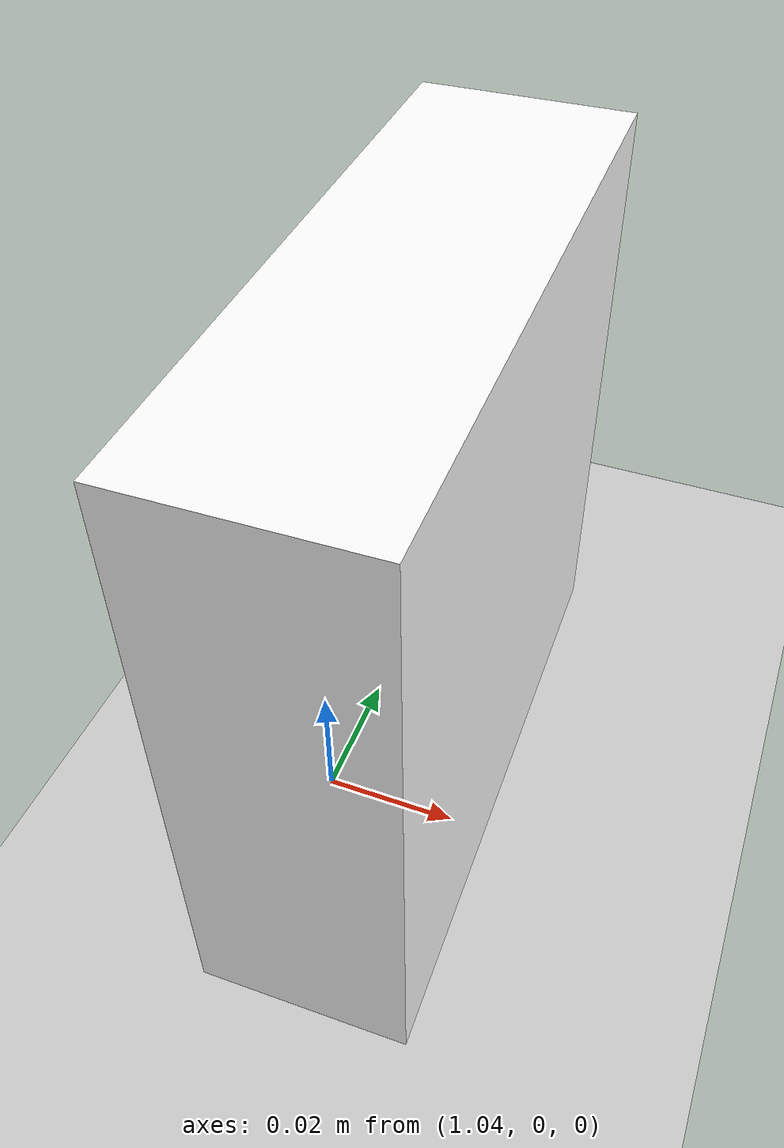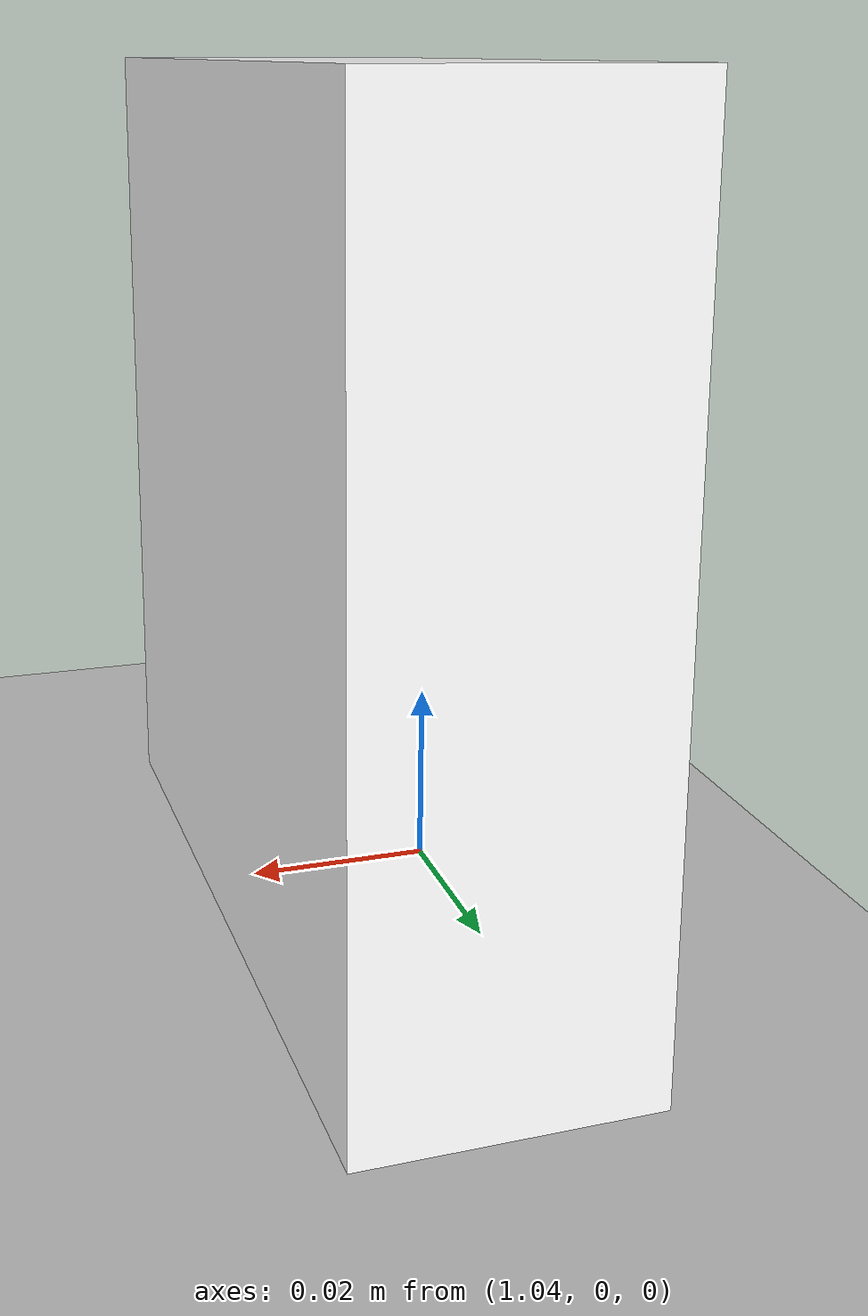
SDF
<sdf version="1.6">
 <world name="default">
  <light name="sun" type="directional">
   <pose>0 0 10 0 -0 0</pose>
   <diffuse>0.8 0.8 0.8 1</diffuse>
   <specular>0.2 0.2 0.2 1</specular>
   <attenuation>
    <range>1000</range>
    <constant>0.9</constant>
    <linear>0.01</linear>
    <quadratic>0.001</quadratic>
   </attenuation>
   <direction>-0.5 0.1 -0.9</direction>
  </light>
  <model name="ground_plane">
   <static>1</static>
   <link name="link">
    <collision name="collision">
     <geometry><plane><normal>0 0 1</normal><size>100 100</size></plane></geometry>
     <surface><friction><ode><mu>100</mu><mu2>50</mu2></ode></friction></surface>
    </collision>
    <visual name="visual">
     <cast_shadows>0</cast_shadows>
     <geometry><plane><normal>0 0 1</normal><size>100 100</size></plane></geometry>
     <material>
      <script><uri>file://media/materials/scripts/gazebo.material</uri><name>Gazebo/Grey</name></script>
     </material>
    </visual>
   </link>
  </model>
  <gravity>0 0 -9.8</gravity>
  <magnetic_field>6e-06 2.3e-05 -4.2e-05</magnetic_field>
  <atmosphere type="adiabatic"/>
  <physics name="default_physics" default="0" type="ode">
   <max_step_size>0.001</max_step_size>
   <real_time_factor>1</real_time_factor>
   <real_time_update_rate>1000</real_time_update_rate>
  </physics>
  <scene><ambient>0.4 0.4 0.4 1</ambient><background>0.7 0.7 0.7 1</background><shadows>1</shadows></scene>
  <audio><device>default</device></audio>
  <spherical_coordinates>
   <surface_model>EARTH_WGS84</surface_model>
   <latitude_deg>0</latitude_deg>
   <longitude_deg>0</longitude_deg>
   <elevation>0</elevation>
   <heading_deg>0</heading_deg>
  </spherical_coordinates>
  <model name="alvar_target">
   <link name="base">
    <collision name="collision">
     <geometry><mesh><uri>model://alvar_target/meshes/alvarTag.dae</uri></mesh></geometry>
    </collision>
    <visual name="visual">
     <geometry><mesh><uri>model://alvar_target/meshes/alvarTag.dae</uri></mesh></geometry>
     <material>
      <script>
       <uri>model://alvar_target/materials/scripts</uri>
       <uri>model://alvar_target/materials/textures</uri>
       <name>Hospital/tag</name>
      </script>
      <ambient>1 1 1 1</ambient>
      <shader type="vertex"><normal_map>__default__</normal_map></shader>
      <diffuse>1 1 1 1</diffuse>
      <specular>0 0 0 1</specular>
      <emissive>0 0 0 1</emissive>
     </material>
    </visual>
    <inertial>
     <inertia><ixx>1</ixx><ixy>0</ixy><ixz>0</ixz><iyy>1</iyy><iyz>0</iyz><izz>1</izz></inertia>
     <mass>1</mass>
    </inertial>
   </link>
   <pose>1.05044 0.009552 0.044992 -7e-06 1e-06 -1.55513</pose>
  </model>
 </world>
</sdf>
